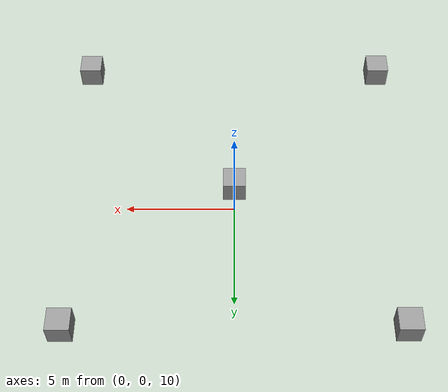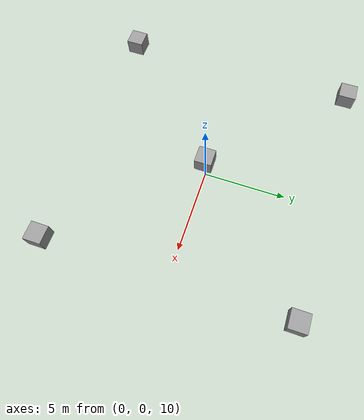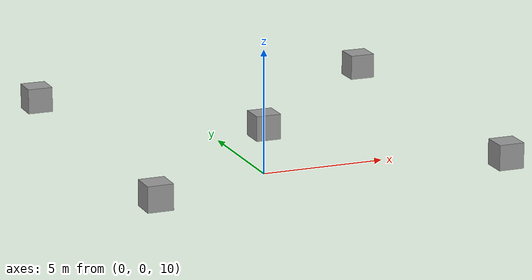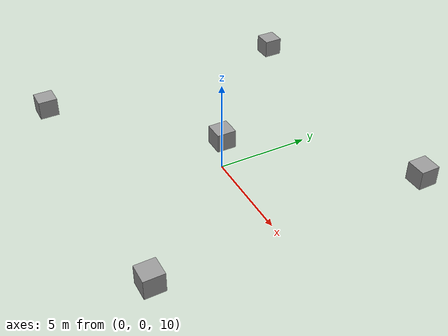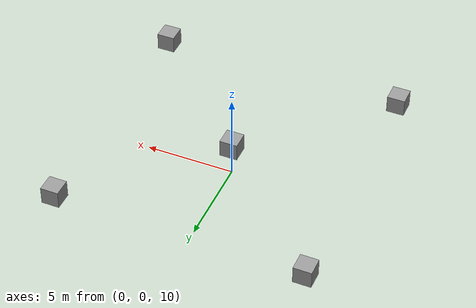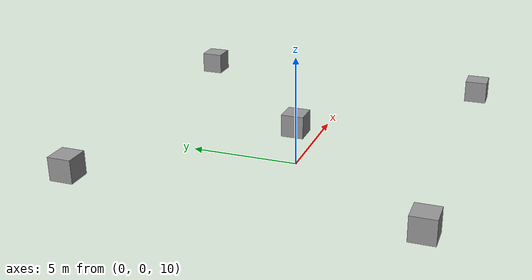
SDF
<sdf version="1.6">
 <world name="default">
  <model name="unit_box">
   <pose>0 0 12 0 0 0</pose>
   <link name="link">
    <inertial>
     <mass>1</mass>
     <inertia>
      <ixx>0.166667</ixx>
      <ixy>0</ixy>
      <ixz>0</ixz>
      <iyy>0.166667</iyy>
      <iyz>0</iyz>
      <izz>0.166667</izz>
     </inertia>
    </inertial>
    <collision name="collision"><geometry><box><size>1 1 1</size></box></geometry></collision>
    <visual name="visual">
     <geometry><box><size>1 1 1</size></box></geometry>
     <material>
      <script><name>Gazebo/Grey</name><uri>file://media/materials/scripts/gazebo.material</uri></script>
     </material>
    </visual>
   </link>
  </model>
  <model name="unit_box_0">
   <pose>-7 -7 12 0 0 0</pose>
   <link name="link">
    <inertial>
     <mass>1</mass>
     <inertia>
      <ixx>0.166667</ixx>
      <ixy>0</ixy>
      <ixz>0</ixz>
      <iyy>0.166667</iyy>
      <iyz>0</iyz>
      <izz>0.166667</izz>
     </inertia>
    </inertial>
    <collision name="collision"><geometry><box><size>1 1 1</size></box></geometry></collision>
    <visual name="visual">
     <geometry><box><size>1 1 1</size></box></geometry>
     <material>
      <script><name>Gazebo/Grey</name><uri>file://media/materials/scripts/gazebo.material</uri></script>
     </material>
    </visual>
   </link>
  </model>
  <model name="unit_box_1">
   <pose>7 7 12 0 0 0</pose>
   <link name="link">
    <inertial>
     <mass>1</mass>
     <inertia>
      <ixx>0.166667</ixx>
      <ixy>0</ixy>
      <ixz>0</ixz>
      <iyy>0.166667</iyy>
      <iyz>0</iyz>
      <izz>0.166667</izz>
     </inertia>
    </inertial>
    <collision name="collision"><geometry><box><size>1 1 1</size></box></geometry></collision>
    <visual name="visual">
     <geometry><box><size>1 1 1</size></box></geometry>
     <material>
      <script><name>Gazebo/Grey</name><uri>file://media/materials/scripts/gazebo.material</uri></script>
     </material>
    </visual>
   </link>
  </model>
  <model name="unit_box_2">
   <pose>7 -7 12 0 0 0</pose>
   <link name="link">
    <inertial>
     <mass>1</mass>
     <inertia>
      <ixx>0.166667</ixx>
      <ixy>0</ixy>
      <ixz>0</ixz>
      <iyy>0.166667</iyy>
      <iyz>0</iyz>
      <izz>0.166667</izz>
     </inertia>
    </inertial>
    <collision name="collision"><geometry><box><size>1 1 1</size></box></geometry></collision>
    <visual name="visual">
     <geometry><box><size>1 1 1</size></box></geometry>
     <material>
      <script><name>Gazebo/Grey</name><uri>file://media/materials/scripts/gazebo.material</uri></script>
     </material>
    </visual>
   </link>
  </model>
  <model name="unit_box_5">
   <pose>-7 7 12 0 0 0</pose>
   <link name="link">
    <inertial>
     <mass>1</mass>
     <inertia>
      <ixx>0.166667</ixx>
      <ixy>0</ixy>
      <ixz>0</ixz>
      <iyy>0.166667</iyy>
      <iyz>0</iyz>
      <izz>0.166667</izz>
     </inertia>
    </inertial>
    <collision name="collision"><geometry><box><size>1 1 1</size></box></geometry></collision>
    <visual name="visual">
     <geometry><box><size>1 1 1</size></box></geometry>
     <material>
      <script><name>Gazebo/Grey</name><uri>file://media/materials/scripts/gazebo.material</uri></script>
     </material>
    </visual>
   </link>
  </model>
 </world>
</sdf>
